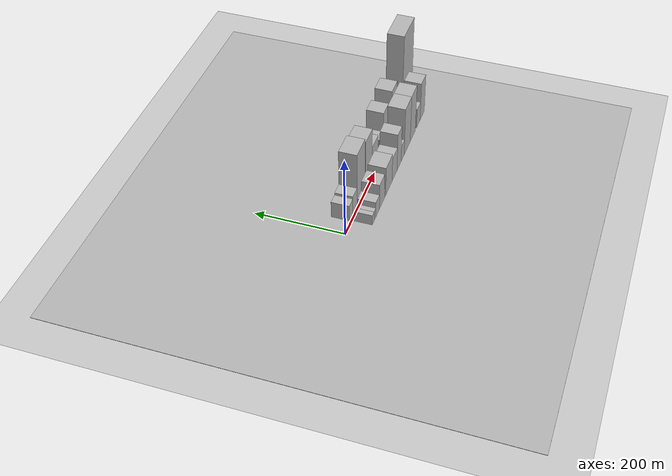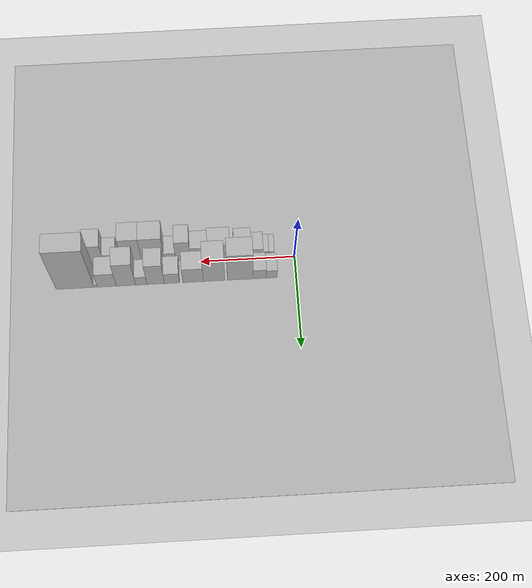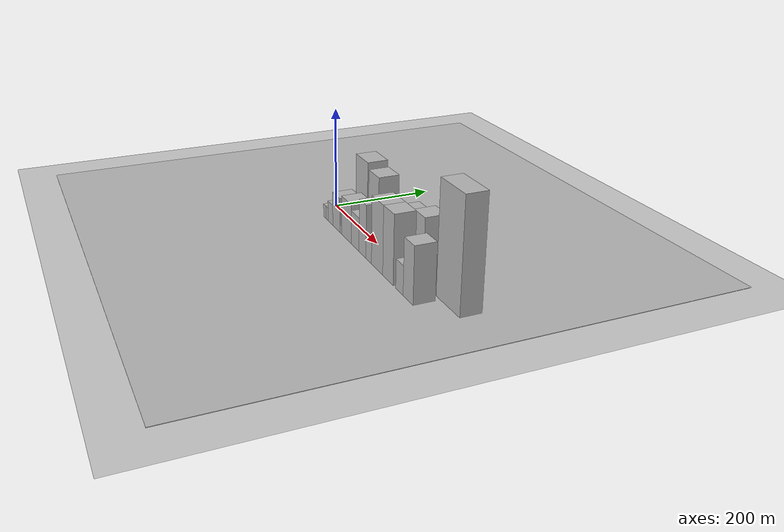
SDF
<?xml version="1.0" encoding="utf-8"?>

<sdf version="1.6">

   <world name="default">

      <gui fullscreen="0">

         <camera name="user_camera">

            <pose>-15 0 4.57585 0 0 0</pose>

            <view_controller>orbit</view_controller>

         </camera>

      </gui>

      <scene>

         <sky>

           <clouds>

             <speed>12</speed>

           </clouds>

         </sky>

         <ambient>0.4 0.4 0.4 1</ambient>

         <background>0.7 0.7 0.7 1</background>

         <shadows>1</shadows>

      </scene>

      <gravity>0 0 -9.8066</gravity>

      <magnetic_field>6e-06 2.3e-05 -4.2e-05</magnetic_field>

      <physics default="0" name="default_physics" type="ode">

         <ode>

            <solver>

               <type>quick</type>

               <iters>10</iters>

               <sor>1.0</sor>

               <use_dynamic_moi_rescaling>0</use_dynamic_moi_rescaling>

            </solver>

            <constraints>

               <cfm>0</cfm>

               <erp>0.2</erp>

               <contact_max_correcting_vel>100</contact_max_correcting_vel>

               <contact_surface_layer>0.001</contact_surface_layer>

            </constraints>

         </ode>

         <max_step_size>0.004</max_step_size>

         <real_time_factor>1</real_time_factor>

         <real_time_update_rate>250</real_time_update_rate>

      </physics>

      <light name="sun" type="directional">

         <cast_shadows>1</cast_shadows>

         <pose>0 0 10 0 0 0</pose>

         <diffuse>0.8 0.8 0.8 1</diffuse>

         <specular>0.2 0.2 0.2 1</specular>

         <attenuation>

            <range>1000</range>

            <constant>0.9</constant>

            <linear>0.01</linear>

            <quadratic>0.001</quadratic>

         </attenuation>

         <direction>-0.5 0.1 -0.9</direction>

      </light>

      <include>

         <name>ground_plane_1</name>

         <uri>model://HANNAS_ground_plane</uri>

         <pose>0 0 0  0 0 0</pose>

      </include>

      <include>

         <name>ground_plane_2</name>

         <uri>model://HANNAS_ground_plane</uri>

         <pose>100 0 0  0 0 0</pose>

      </include>

      <model name="building_1">

         <static>1</static>

         <pose frame="">51.5973 24.5000 0 0.000000 0.000000 1.570796</pose>

         <link name="link">

            <pose frame="">0 0 21.00 0 0 0</pose>

            <collision name="collision">

               <geometry>

                  <box>

                     <size>40.0000 23.1946 42.0000</size>

                  </box>

               </geometry>

               <max_contacts>10</max_contacts>

               <surface>

                  <contact>

                     <ode/>

                  </contact>

                  <bounce/>

                  <friction>

                     <torsional>

                        <ode/>

                     </torsional>

                     <ode/>

                  </friction>

               </surface>

            </collision>

            <visual name="visual">

               <cast_shadows>0</cast_shadows>

               <geometry>

                  <box>

                     <size>40.0000 23.1946 42.0000</size>

                  </box>

               </geometry>

               <material>

                  <script>

                     <uri>model://HANNAS_wall/materials/scripts</uri>

                     <uri>model://HANNAS_wall/materials/textures</uri>

                     <name>vrc/HANNAS_wall</name>

                  </script>

               </material>

            </visual>

            <self_collide>0</self_collide>

            <enable_wind>0</enable_wind>

            <kinematic>0</kinematic>

         </link>

      </model>

      <model name="building_2">

         <static>1</static>

         <pose frame="">77.1093 24.5000 0 0.000000 0.000000 1.570796</pose>

         <link name="link">

            <pose frame="">0 0 24.00 0 0 0</pose>

            <collision name="collision">

               <geometry>

                  <box>

                     <size>40.0000 27.8294 48.0000</size>

                  </box>

               </geometry>

               <max_contacts>10</max_contacts>

               <surface>

                  <contact>

                     <ode/>

                  </contact>

                  <bounce/>

                  <friction>

                     <torsional>

                        <ode/>

                     </torsional>

                     <ode/>

                  </friction>

               </surface>

            </collision>

            <visual name="visual">

               <cast_shadows>0</cast_shadows>

               <geometry>

                  <box>

                     <size>40.0000 27.8294 48.0000</size>

                  </box>

               </geometry>

               <material>

                  <script>

                     <uri>model://HANNAS_wall/materials/scripts</uri>

                     <uri>model://HANNAS_wall/materials/textures</uri>

                     <name>vrc/HANNAS_wall</name>

                  </script>

               </material>

            </visual>

            <self_collide>0</self_collide>

            <enable_wind>0</enable_wind>

            <kinematic>0</kinematic>

         </link>

      </model>

      <model name="building_3">

         <static>1</static>

         <pose frame="">118.0186 24.5000 0 0.000000 0.000000 1.570796</pose>

         <link name="link">

            <pose frame="">0 0 69.00 0 0 0</pose>

            <collision name="collision">

               <geometry>

                  <box>

                     <size>40.0000 53.9892 138.0000</size>

                  </box>

               </geometry>

               <max_contacts>10</max_contacts>

               <surface>

                  <contact>

                     <ode/>

                  </contact>

                  <bounce/>

                  <friction>

                     <torsional>

                        <ode/>

                     </torsional>

                     <ode/>

                  </friction>

               </surface>

            </collision>

            <visual name="visual">

               <cast_shadows>0</cast_shadows>

               <geometry>

                  <box>

                     <size>40.0000 53.9892 138.0000</size>

                  </box>

               </geometry>

               <material>

                  <script>

                     <uri>model://HANNAS_wall/materials/scripts</uri>

                     <uri>model://HANNAS_wall/materials/textures</uri>

                     <name>vrc/HANNAS_wall</name>

                  </script>

               </material>

            </visual>

            <self_collide>0</self_collide>

            <enable_wind>0</enable_wind>

            <kinematic>0</kinematic>

         </link>

      </model>

      <model name="building_4">

         <static>1</static>

         <pose frame="">172.7192 24.5000 0 0.000000 0.000000 1.570796</pose>

         <link name="link">

            <pose frame="">0 0 63.00 0 0 0</pose>

            <collision name="collision">

               <geometry>

                  <box>

                     <size>40.0000 45.4120 126.0000</size>

                  </box>

               </geometry>

               <max_contacts>10</max_contacts>

               <surface>

                  <contact>

                     <ode/>

                  </contact>

                  <bounce/>

                  <friction>

                     <torsional>

                        <ode/>

                     </torsional>

                     <ode/>

                  </friction>

               </surface>

            </collision>

            <visual name="visual">

               <cast_shadows>0</cast_shadows>

               <geometry>

                  <box>

                     <size>40.0000 45.4120 126.0000</size>

                  </box>

               </geometry>

               <material>

                  <script>

                     <uri>model://HANNAS_wall/materials/scripts</uri>

                     <uri>model://HANNAS_wall/materials/textures</uri>

                     <name>vrc/HANNAS_wall</name>

                  </script>

               </material>

            </visual>

            <self_collide>0</self_collide>

            <enable_wind>0</enable_wind>

            <kinematic>0</kinematic>

         </link>

      </model>

      <model name="building_5">

         <static>1</static>

         <pose frame="">216.9900 24.5000 0 0.000000 0.000000 1.570796</pose>

         <link name="link">

            <pose frame="">0 0 37.50 0 0 0</pose>

            <collision name="collision">

               <geometry>

                  <box>

                     <size>40.0000 43.1296 75.0000</size>

                  </box>

               </geometry>

               <max_contacts>10</max_contacts>

               <surface>

                  <contact>

                     <ode/>

                  </contact>

                  <bounce/>

                  <friction>

                     <torsional>

                        <ode/>

                     </torsional>

                     <ode/>

                  </friction>

               </surface>

            </collision>

            <visual name="visual">

               <cast_shadows>0</cast_shadows>

               <geometry>

                  <box>

                     <size>40.0000 43.1296 75.0000</size>

                  </box>

               </geometry>

               <material>

                  <script>

                     <uri>model://HANNAS_wall/materials/scripts</uri>

                     <uri>model://HANNAS_wall/materials/textures</uri>

                     <name>vrc/HANNAS_wall</name>

                  </script>

               </material>

            </visual>

            <self_collide>0</self_collide>

            <enable_wind>0</enable_wind>

            <kinematic>0</kinematic>

         </link>

      </model>

      <model name="building_6">

         <static>1</static>

         <pose frame="">261.3660 24.5000 0 0.000000 0.000000 1.570796</pose>

         <link name="link">

            <pose frame="">0 0 27.00 0 0 0</pose>

            <collision name="collision">

               <geometry>

                  <box>

                     <size>40.0000 31.6223 54.0000</size>

                  </box>

               </geometry>

               <max_contacts>10</max_contacts>

               <surface>

                  <contact>

                     <ode/>

                  </contact>

                  <bounce/>

                  <friction>

                     <torsional>

                        <ode/>

                     </torsional>

                     <ode/>

                  </friction>

               </surface>

            </collision>

            <visual name="visual">

               <cast_shadows>0</cast_shadows>

               <geometry>

                  <box>

                     <size>40.0000 31.6223 54.0000</size>

                  </box>

               </geometry>

               <material>

                  <script>

                     <uri>model://HANNAS_wall/materials/scripts</uri>

                     <uri>model://HANNAS_wall/materials/textures</uri>

                     <name>vrc/HANNAS_wall</name>

                  </script>

               </material>

            </visual>

            <self_collide>0</self_collide>

            <enable_wind>0</enable_wind>

            <kinematic>0</kinematic>

         </link>

      </model>

      <model name="building_7">

         <static>1</static>

         <pose frame="">295.4621 24.5000 0 0.000000 0.000000 1.570796</pose>

         <link name="link">

            <pose frame="">0 0 52.50 0 0 0</pose>

            <collision name="collision">

               <geometry>

                  <box>

                     <size>40.0000 36.5700 105.0000</size>

                  </box>

               </geometry>

               <max_contacts>10</max_contacts>

               <surface>

                  <contact>

                     <ode/>

                  </contact>

                  <bounce/>

                  <friction>

                     <torsional>

                        <ode/>

                     </torsional>

                     <ode/>

                  </friction>

               </surface>

            </collision>

            <visual name="visual">

               <cast_shadows>0</cast_shadows>

               <geometry>

                  <box>

                     <size>40.0000 36.5700 105.0000</size>

                  </box>

               </geometry>

               <material>

                  <script>

                     <uri>model://HANNAS_wall/materials/scripts</uri>

                     <uri>model://HANNAS_wall/materials/textures</uri>

                     <name>vrc/HANNAS_wall</name>

                  </script>

               </material>

            </visual>

            <self_collide>0</self_collide>

            <enable_wind>0</enable_wind>

            <kinematic>0</kinematic>

         </link>

      </model>

      <model name="building_8">

         <static>1</static>

         <pose frame="">325.6835 24.5000 0 0.000000 0.000000 1.570796</pose>

         <link name="link">

            <pose frame="">0 0 22.50 0 0 0</pose>

            <collision name="collision">

               <geometry>

                  <box>

                     <size>40.0000 23.8728 45.0000</size>

                  </box>

               </geometry>

               <max_contacts>10</max_contacts>

               <surface>

                  <contact>

                     <ode/>

                  </contact>

                  <bounce/>

                  <friction>

                     <torsional>

                        <ode/>

                     </torsional>

                     <ode/>

                  </friction>

               </surface>

            </collision>

            <visual name="visual">

               <cast_shadows>0</cast_shadows>

               <geometry>

                  <box>

                     <size>40.0000 23.8728 45.0000</size>

                  </box>

               </geometry>

               <material>

                  <script>

                     <uri>model://HANNAS_wall/materials/scripts</uri>

                     <uri>model://HANNAS_wall/materials/textures</uri>

                     <name>vrc/HANNAS_wall</name>

                  </script>

               </material>

            </visual>

            <self_collide>0</self_collide>

            <enable_wind>0</enable_wind>

            <kinematic>0</kinematic>

         </link>

      </model>

      <model name="building_9">

         <static>1</static>

         <pose frame="">357.8787 24.5000 0 0.000000 0.000000 1.570796</pose>

         <link name="link">

            <pose frame="">0 0 60.00 0 0 0</pose>

            <collision name="collision">

               <geometry>

                  <box>

                     <size>40.0000 40.5176 120.0000</size>

                  </box>

               </geometry>

               <max_contacts>10</max_contacts>

               <surface>

                  <contact>

                     <ode/>

                  </contact>

                  <bounce/>

                  <friction>

                     <torsional>

                        <ode/>

                     </torsional>

                     <ode/>

                  </friction>

               </surface>

            </collision>

            <visual name="visual">

               <cast_shadows>0</cast_shadows>

               <geometry>

                  <box>

                     <size>40.0000 40.5176 120.0000</size>

                  </box>

               </geometry>

               <material>

                  <script>

                     <uri>model://HANNAS_wall/materials/scripts</uri>

                     <uri>model://HANNAS_wall/materials/textures</uri>

                     <name>vrc/HANNAS_wall</name>

                  </script>

               </material>

            </visual>

            <self_collide>0</self_collide>

            <enable_wind>0</enable_wind>

            <kinematic>0</kinematic>

         </link>

      </model>

      <model name="building_10">

         <static>1</static>

         <pose frame="">398.0920 24.5000 0 0.000000 0.000000 1.570796</pose>

         <link name="link">

            <pose frame="">0 0 36.00 0 0 0</pose>

            <collision name="collision">

               <geometry>

                  <box>

                     <size>40.0000 39.9090 72.0000</size>

                  </box>

               </geometry>

               <max_contacts>10</max_contacts>

               <surface>

                  <contact>

                     <ode/>

                  </contact>

                  <bounce/>

                  <friction>

                     <torsional>

                        <ode/>

                     </torsional>

                     <ode/>

                  </friction>

               </surface>

            </collision>

            <visual name="visual">

               <cast_shadows>0</cast_shadows>

               <geometry>

                  <box>

                     <size>40.0000 39.9090 72.0000</size>

                  </box>

               </geometry>

               <material>

                  <script>

                     <uri>model://HANNAS_wall/materials/scripts</uri>

                     <uri>model://HANNAS_wall/materials/textures</uri>

                     <name>vrc/HANNAS_wall</name>

                  </script>

               </material>

            </visual>

            <self_collide>0</self_collide>

            <enable_wind>0</enable_wind>

            <kinematic>0</kinematic>

         </link>

      </model>

      <model name="building_11">

         <static>1</static>

         <pose frame="">421.5787 24.5000 0 0.000000 0.000000 1.570796</pose>

         <link name="link">

            <pose frame="">0 0 7.50 0 0 0</pose>

            <collision name="collision">

               <geometry>

                  <box>

                     <size>40.0000 7.0644 15.0000</size>

                  </box>

               </geometry>

               <max_contacts>10</max_contacts>

               <surface>

                  <contact>

                     <ode/>

                  </contact>

                  <bounce/>

                  <friction>

                     <torsional>

                        <ode/>

                     </torsional>

                     <ode/>

                  </friction>

               </surface>

            </collision>

            <visual name="visual">

               <cast_shadows>0</cast_shadows>

               <geometry>

                  <box>

                     <size>40.0000 7.0644 15.0000</size>

                  </box>

               </geometry>

               <material>

                  <script>

                     <uri>model://HANNAS_wall/materials/scripts</uri>

                     <uri>model://HANNAS_wall/materials/textures</uri>

                     <name>vrc/HANNAS_wall</name>

                  </script>

               </material>

            </visual>

            <self_collide>0</self_collide>

            <enable_wind>0</enable_wind>

            <kinematic>0</kinematic>

         </link>

      </model>

      <model name="building_12">

         <static>1</static>

         <pose frame="">464.7364 24.5000 0 0.000000 0.000000 1.570796</pose>

         <link name="link">

            <pose frame="">0 0 103.50 0 0 0</pose>

            <collision name="collision">

               <geometry>

                  <box>

                     <size>40.0000 79.2510 207.0000</size>

                  </box>

               </geometry>

               <max_contacts>10</max_contacts>

               <surface>

                  <contact>

                     <ode/>

                  </contact>

                  <bounce/>

                  <friction>

                     <torsional>

                        <ode/>

                     </torsional>

                     <ode/>

                  </friction>

               </surface>

            </collision>

            <visual name="visual">

               <cast_shadows>0</cast_shadows>

               <geometry>

                  <box>

                     <size>40.0000 79.2510 207.0000</size>

                  </box>

               </geometry>

               <material>

                  <script>

                     <uri>model://HANNAS_wall/materials/scripts</uri>

                     <uri>model://HANNAS_wall/materials/textures</uri>

                     <name>vrc/HANNAS_wall</name>

                  </script>

               </material>

            </visual>

            <self_collide>0</self_collide>

            <enable_wind>0</enable_wind>

            <kinematic>0</kinematic>

         </link>

      </model>

      <model name="building_13">

         <static>1</static>

         <pose frame="">48.9707 -24.5000 0 0.000000 0.000000 1.570796</pose>

         <link name="link">

            <pose frame="">0 0 13.50 0 0 0</pose>

            <collision name="collision">

               <geometry>

                  <box>

                     <size>40.0000 11.9414 27.0000</size>

                  </box>

               </geometry>

               <max_contacts>10</max_contacts>

               <surface>

                  <contact>

                     <ode/>

                  </contact>

                  <bounce/>

                  <friction>

                     <torsional>

                        <ode/>

                     </torsional>

                     <ode/>

                  </friction>

               </surface>

            </collision>

            <visual name="visual">

               <cast_shadows>0</cast_shadows>

               <geometry>

                  <box>

                     <size>40.0000 11.9414 27.0000</size>

                  </box>

               </geometry>

               <material>

                  <script>

                     <uri>model://HANNAS_wall/materials/scripts</uri>

                     <uri>model://HANNAS_wall/materials/textures</uri>

                     <name>vrc/HANNAS_wall</name>

                  </script>

               </material>

            </visual>

            <self_collide>0</self_collide>

            <enable_wind>0</enable_wind>

            <kinematic>0</kinematic>

         </link>

      </model>

      <model name="building_14">

         <static>1</static>

         <pose frame="">60.8816 -24.5000 0 0.000000 0.000000 1.570796</pose>

         <link name="link">

            <pose frame="">0 0 13.50 0 0 0</pose>

            <collision name="collision">

               <geometry>

                  <box>

                     <size>40.0000 11.8805 27.0000</size>

                  </box>

               </geometry>

               <max_contacts>10</max_contacts>

               <surface>

                  <contact>

                     <ode/>

                  </contact>

                  <bounce/>

                  <friction>

                     <torsional>

                        <ode/>

                     </torsional>

                     <ode/>

                  </friction>

               </surface>

            </collision>

            <visual name="visual">

               <cast_shadows>0</cast_shadows>

               <geometry>

                  <box>

                     <size>40.0000 11.8805 27.0000</size>

                  </box>

               </geometry>

               <material>

                  <script>

                     <uri>model://HANNAS_wall/materials/scripts</uri>

                     <uri>model://HANNAS_wall/materials/textures</uri>

                     <name>vrc/HANNAS_wall</name>

                  </script>

               </material>

            </visual>

            <self_collide>0</self_collide>

            <enable_wind>0</enable_wind>

            <kinematic>0</kinematic>

         </link>

      </model>

      <model name="building_15">

         <static>1</static>

         <pose frame="">79.3261 -24.5000 0 0.000000 0.000000 1.570796</pose>

         <link name="link">

            <pose frame="">0 0 21.00 0 0 0</pose>

            <collision name="collision">

               <geometry>

                  <box>

                     <size>40.0000 25.0086 42.0000</size>

                  </box>

               </geometry>

               <max_contacts>10</max_contacts>

               <surface>

                  <contact>

                     <ode/>

                  </contact>

                  <bounce/>

                  <friction>

                     <torsional>

                        <ode/>

                     </torsional>

                     <ode/>

                  </friction>

               </surface>

            </collision>

            <visual name="visual">

               <cast_shadows>0</cast_shadows>

               <geometry>

                  <box>

                     <size>40.0000 25.0086 42.0000</size>

                  </box>

               </geometry>

               <material>

                  <script>

                     <uri>model://HANNAS_wall/materials/scripts</uri>

                     <uri>model://HANNAS_wall/materials/textures</uri>

                     <name>vrc/HANNAS_wall</name>

                  </script>

               </material>

            </visual>

            <self_collide>0</self_collide>

            <enable_wind>0</enable_wind>

            <kinematic>0</kinematic>

         </link>

      </model>

      <model name="building_16">

         <static>1</static>

         <pose frame="">109.9999 -24.5000 0 0.000000 0.000000 1.570796</pose>

         <link name="link">

            <pose frame="">0 0 34.50 0 0 0</pose>

            <collision name="collision">

               <geometry>

                  <box>

                     <size>40.0000 36.3388 69.0000</size>

                  </box>

               </geometry>

               <max_contacts>10</max_contacts>

               <surface>

                  <contact>

                     <ode/>

                  </contact>

                  <bounce/>

                  <friction>

                     <torsional>

                        <ode/>

                     </torsional>

                     <ode/>

                  </friction>

               </surface>

            </collision>

            <visual name="visual">

               <cast_shadows>0</cast_shadows>

               <geometry>

                  <box>

                     <size>40.0000 36.3388 69.0000</size>

                  </box>

               </geometry>

               <material>

                  <script>

                     <uri>model://HANNAS_wall/materials/scripts</uri>

                     <uri>model://HANNAS_wall/materials/textures</uri>

                     <name>vrc/HANNAS_wall</name>

                  </script>

               </material>

            </visual>

            <self_collide>0</self_collide>

            <enable_wind>0</enable_wind>

            <kinematic>0</kinematic>

         </link>

      </model>

      <model name="building_17">

         <static>1</static>

         <pose frame="">132.4375 -24.5000 0 0.000000 0.000000 1.570796</pose>

         <link name="link">

            <pose frame="">0 0 9.00 0 0 0</pose>

            <collision name="collision">

               <geometry>

                  <box>

                     <size>40.0000 8.5364 18.0000</size>

                  </box>

               </geometry>

               <max_contacts>10</max_contacts>

               <surface>

                  <contact>

                     <ode/>

                  </contact>

                  <bounce/>

                  <friction>

                     <torsional>

                        <ode/>

                     </torsional>

                     <ode/>

                  </friction>

               </surface>

            </collision>

            <visual name="visual">

               <cast_shadows>0</cast_shadows>

               <geometry>

                  <box>

                     <size>40.0000 8.5364 18.0000</size>

                  </box>

               </geometry>

               <material>

                  <script>

                     <uri>model://HANNAS_wall/materials/scripts</uri>

                     <uri>model://HANNAS_wall/materials/textures</uri>

                     <name>vrc/HANNAS_wall</name>

                  </script>

               </material>

            </visual>

            <self_collide>0</self_collide>

            <enable_wind>0</enable_wind>

            <kinematic>0</kinematic>

         </link>

      </model>

      <model name="building_18">

         <static>1</static>

         <pose frame="">160.0259 -24.5000 0 0.000000 0.000000 1.570796</pose>

         <link name="link">

            <pose frame="">0 0 39.00 0 0 0</pose>

            <collision name="collision">

               <geometry>

                  <box>

                     <size>40.0000 46.6404 78.0000</size>

                  </box>

               </geometry>

               <max_contacts>10</max_contacts>

               <surface>

                  <contact>

                     <ode/>

                  </contact>

                  <bounce/>

                  <friction>

                     <torsional>

                        <ode/>

                     </torsional>

                     <ode/>

                  </friction>

               </surface>

            </collision>

            <visual name="visual">

               <cast_shadows>0</cast_shadows>

               <geometry>

                  <box>

                     <size>40.0000 46.6404 78.0000</size>

                  </box>

               </geometry>

               <material>

                  <script>

                     <uri>model://HANNAS_wall/materials/scripts</uri>

                     <uri>model://HANNAS_wall/materials/textures</uri>

                     <name>vrc/HANNAS_wall</name>

                  </script>

               </material>

            </visual>

            <self_collide>0</self_collide>

            <enable_wind>0</enable_wind>

            <kinematic>0</kinematic>

         </link>

      </model>

      <model name="building_19">

         <static>1</static>

         <pose frame="">201.7365 -24.5000 0 0.000000 0.000000 1.570796</pose>

         <link name="link">

            <pose frame="">0 0 33.00 0 0 0</pose>

            <collision name="collision">

               <geometry>

                  <box>

                     <size>40.0000 36.7809 66.0000</size>

                  </box>

               </geometry>

               <max_contacts>10</max_contacts>

               <surface>

                  <contact>

                     <ode/>

                  </contact>

                  <bounce/>

                  <friction>

                     <torsional>

                        <ode/>

                     </torsional>

                     <ode/>

                  </friction>

               </surface>

            </collision>

            <visual name="visual">

               <cast_shadows>0</cast_shadows>

               <geometry>

                  <box>

                     <size>40.0000 36.7809 66.0000</size>

                  </box>

               </geometry>

               <material>

                  <script>

                     <uri>model://HANNAS_wall/materials/scripts</uri>

                     <uri>model://HANNAS_wall/materials/textures</uri>

                     <name>vrc/HANNAS_wall</name>

                  </script>

               </material>

            </visual>

            <self_collide>0</self_collide>

            <enable_wind>0</enable_wind>

            <kinematic>0</kinematic>

         </link>

      </model>

      <model name="building_20">

         <static>1</static>

         <pose frame="">235.6997 -24.5000 0 0.000000 0.000000 1.570796</pose>

         <link name="link">

            <pose frame="">0 0 51.00 0 0 0</pose>

            <collision name="collision">

               <geometry>

                  <box>

                     <size>40.0000 31.1454 102.0000</size>

                  </box>

               </geometry>

               <max_contacts>10</max_contacts>

               <surface>

                  <contact>

                     <ode/>

                  </contact>

                  <bounce/>

                  <friction>

                     <torsional>

                        <ode/>

                     </torsional>

                     <ode/>

                  </friction>

               </surface>

            </collision>

            <visual name="visual">

               <cast_shadows>0</cast_shadows>

               <geometry>

                  <box>

                     <size>40.0000 31.1454 102.0000</size>

                  </box>

               </geometry>

               <material>

                  <script>

                     <uri>model://HANNAS_wall/materials/scripts</uri>

                     <uri>model://HANNAS_wall/materials/textures</uri>

                     <name>vrc/HANNAS_wall</name>

                  </script>

               </material>

            </visual>

            <self_collide>0</self_collide>

            <enable_wind>0</enable_wind>

            <kinematic>0</kinematic>

         </link>

      </model>

      <model name="building_21">

         <static>1</static>

         <pose frame="">263.2120 -24.5000 0 0.000000 0.000000 1.570796</pose>

         <link name="link">

            <pose frame="">0 0 22.50 0 0 0</pose>

            <collision name="collision">

               <geometry>

                  <box>

                     <size>40.0000 23.8793 45.0000</size>

                  </box>

               </geometry>

               <max_contacts>10</max_contacts>

               <surface>

                  <contact>

                     <ode/>

                  </contact>

                  <bounce/>

                  <friction>

                     <torsional>

                        <ode/>

                     </torsional>

                     <ode/>

                  </friction>

               </surface>

            </collision>

            <visual name="visual">

               <cast_shadows>0</cast_shadows>

               <geometry>

                  <box>

                     <size>40.0000 23.8793 45.0000</size>

                  </box>

               </geometry>

               <material>

                  <script>

                     <uri>model://HANNAS_wall/materials/scripts</uri>

                     <uri>model://HANNAS_wall/materials/textures</uri>

                     <name>vrc/HANNAS_wall</name>

                  </script>

               </material>

            </visual>

            <self_collide>0</self_collide>

            <enable_wind>0</enable_wind>

            <kinematic>0</kinematic>

         </link>

      </model>

      <model name="building_22">

         <static>1</static>

         <pose frame="">298.9923 -24.5000 0 0.000000 0.000000 1.570796</pose>

         <link name="link">

            <pose frame="">0 0 64.50 0 0 0</pose>

            <collision name="collision">

               <geometry>

                  <box>

                     <size>40.0000 47.6812 129.0000</size>

                  </box>

               </geometry>

               <max_contacts>10</max_contacts>

               <surface>

                  <contact>

                     <ode/>

                  </contact>

                  <bounce/>

                  <friction>

                     <torsional>

                        <ode/>

                     </torsional>

                     <ode/>

                  </friction>

               </surface>

            </collision>

            <visual name="visual">

               <cast_shadows>0</cast_shadows>

               <geometry>

                  <box>

                     <size>40.0000 47.6812 129.0000</size>

                  </box>

               </geometry>

               <material>

                  <script>

                     <uri>model://HANNAS_wall/materials/scripts</uri>

                     <uri>model://HANNAS_wall/materials/textures</uri>

                     <name>vrc/HANNAS_wall</name>

                  </script>

               </material>

            </visual>

            <self_collide>0</self_collide>

            <enable_wind>0</enable_wind>

            <kinematic>0</kinematic>

         </link>

      </model>

      <model name="building_23">

         <static>1</static>

         <pose frame="">343.7657 -24.5000 0 0.000000 0.000000 1.570796</pose>

         <link name="link">

            <pose frame="">0 0 64.50 0 0 0</pose>

            <collision name="collision">

               <geometry>

                  <box>

                     <size>40.0000 41.8657 129.0000</size>

                  </box>

               </geometry>

               <max_contacts>10</max_contacts>

               <surface>

                  <contact>

                     <ode/>

                  </contact>

                  <bounce/>

                  <friction>

                     <torsional>

                        <ode/>

                     </torsional>

                     <ode/>

                  </friction>

               </surface>

            </collision>

            <visual name="visual">

               <cast_shadows>0</cast_shadows>

               <geometry>

                  <box>

                     <size>40.0000 41.8657 129.0000</size>

                  </box>

               </geometry>

               <material>

                  <script>

                     <uri>model://HANNAS_wall/materials/scripts</uri>

                     <uri>model://HANNAS_wall/materials/textures</uri>

                     <name>vrc/HANNAS_wall</name>

                  </script>

               </material>

            </visual>

            <self_collide>0</self_collide>

            <enable_wind>0</enable_wind>

            <kinematic>0</kinematic>

         </link>

      </model>

      <model name="building_24">

         <static>1</static>

         <pose frame="">388.8633 -24.5000 0 0.000000 0.000000 1.570796</pose>

         <link name="link">

            <pose frame="">0 0 27.00 0 0 0</pose>

            <collision name="collision">

               <geometry>

                  <box>

                     <size>40.0000 28.3294 54.0000</size>

                  </box>

               </geometry>

               <max_contacts>10</max_contacts>

               <surface>

                  <contact>

                     <ode/>

                  </contact>

                  <bounce/>

                  <friction>

                     <torsional>

                        <ode/>

                     </torsional>

                     <ode/>

                  </friction>

               </surface>

            </collision>

            <visual name="visual">

               <cast_shadows>0</cast_shadows>

               <geometry>

                  <box>

                     <size>40.0000 28.3294 54.0000</size>

                  </box>

               </geometry>

               <material>

                  <script>

                     <uri>model://HANNAS_wall/materials/scripts</uri>

                     <uri>model://HANNAS_wall/materials/textures</uri>

                     <name>vrc/HANNAS_wall</name>

                  </script>

               </material>

            </visual>

            <self_collide>0</self_collide>

            <enable_wind>0</enable_wind>

            <kinematic>0</kinematic>

         </link>

      </model>

      <model name="building_25">

         <static>1</static>

         <pose frame="">421.3412 -24.5000 0 0.000000 0.000000 1.570796</pose>

         <link name="link">

            <pose frame="">0 0 52.50 0 0 0</pose>

            <collision name="collision">

               <geometry>

                  <box>

                     <size>40.0000 36.6265 105.0000</size>

                  </box>

               </geometry>

               <max_contacts>10</max_contacts>

               <surface>

                  <contact>

                     <ode/>

                  </contact>

                  <bounce/>

                  <friction>

                     <torsional>

                        <ode/>

                     </torsional>

                     <ode/>

                  </friction>

               </surface>

            </collision>

            <visual name="visual">

               <cast_shadows>0</cast_shadows>

               <geometry>

                  <box>

                     <size>40.0000 36.6265 105.0000</size>

                  </box>

               </geometry>

               <material>

                  <script>

                     <uri>model://HANNAS_wall/materials/scripts</uri>

                     <uri>model://HANNAS_wall/materials/textures</uri>

                     <name>vrc/HANNAS_wall</name>

                  </script>

               </material>

            </visual>

            <self_collide>0</self_collide>

            <enable_wind>0</enable_wind>

            <kinematic>0</kinematic>

         </link>

      </model>

   </world>

</sdf>

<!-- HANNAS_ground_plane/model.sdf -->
<sdf version="1.4">
<model name="HANNAS_ground_plane">
  <static>true</static>
    <link name="link">
      <collision name="collision">
        <geometry>
          <plane>
            <normal>0 0 1</normal>
            <size>1000 1000</size>
          </plane>
        </geometry>
        <surface>
          <friction>
            <ode>
              <mu>100</mu>
              <mu2>50</mu2>
            </ode>
          </friction>
        </surface>
      </collision>
      <visual name="visual">
        <cast_shadows>false</cast_shadows>
        <geometry>
          <plane>
            <normal>0 0 1</normal>
            <size>1000 1000</size>
          </plane>
        </geometry>
        <material>
          <script>
            <uri>model://HANNAS_ground_plane/materials/scripts/HANNAS_ground_plane.material</uri>
	    <uri>model://HANNAS_ground_plane/materials/textures</uri>
            <name>HANNASGroundPlane/Image</name>
          </script>
        </material>
      </visual>
    </link>
  </model>
</sdf>
